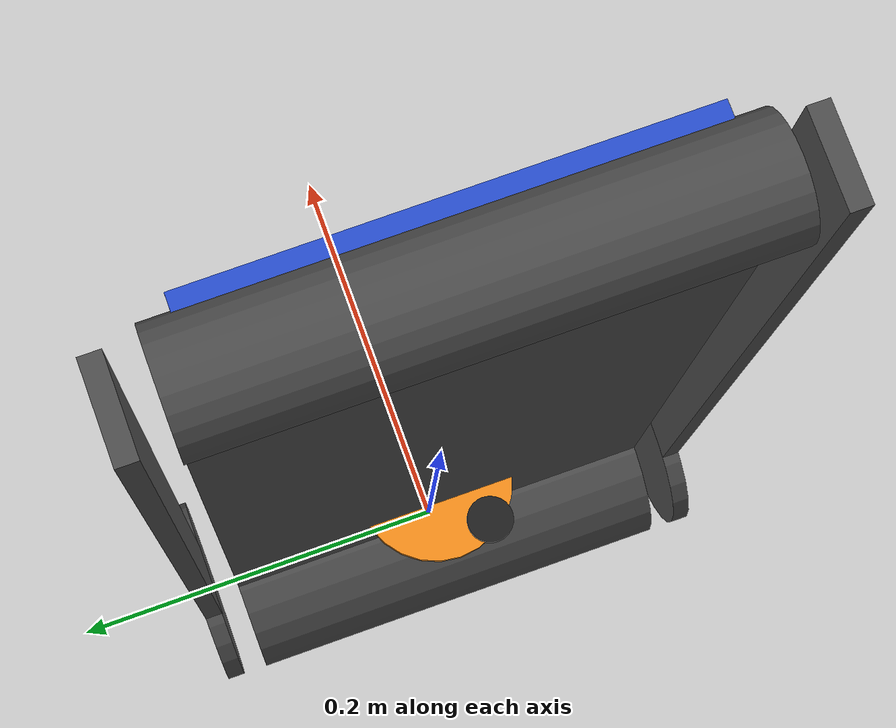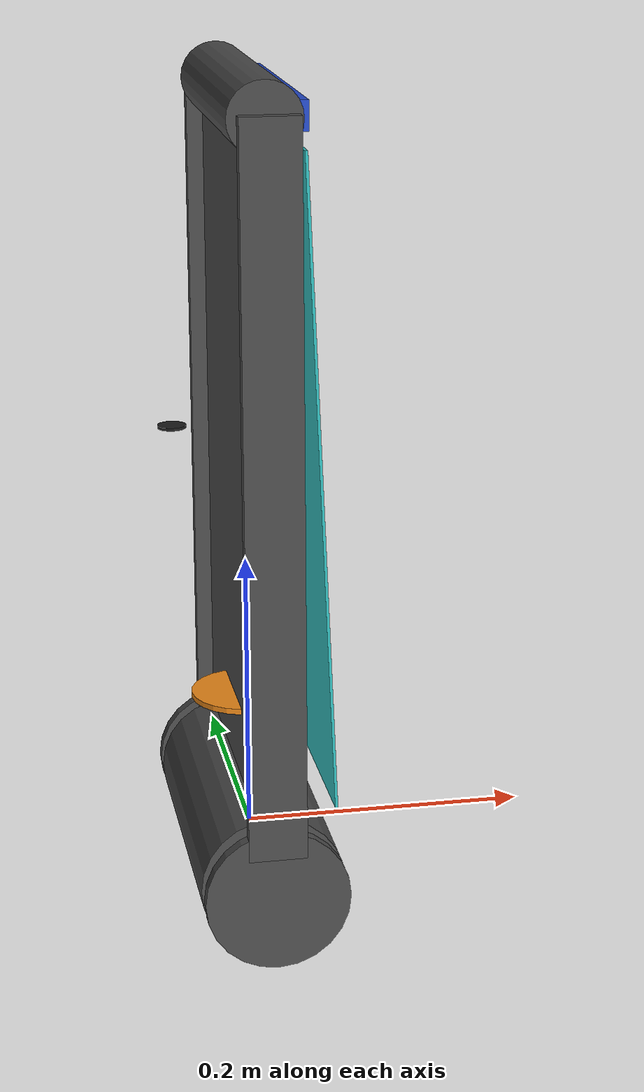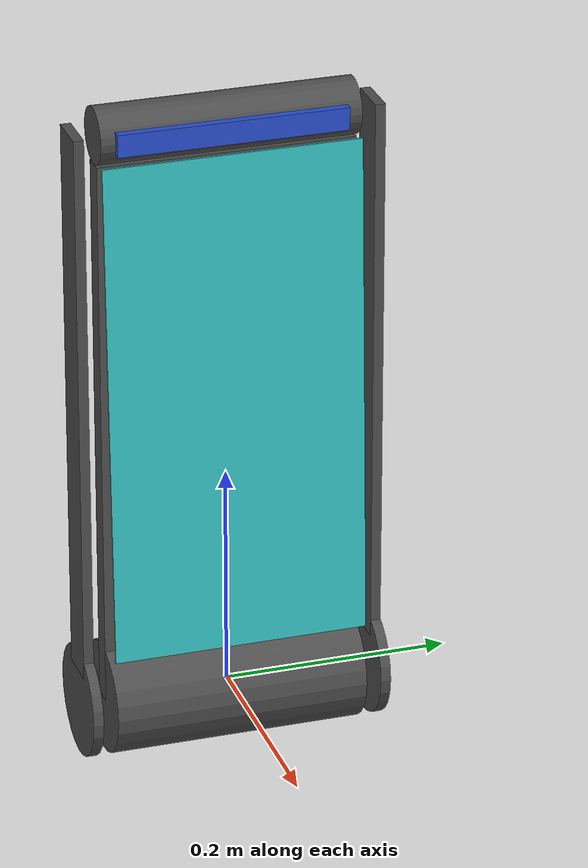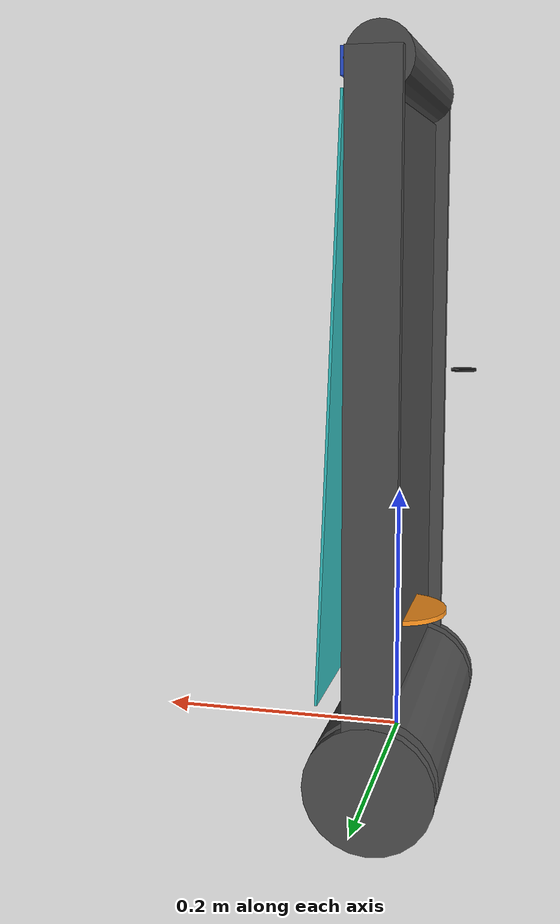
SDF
<?xml version='1.0'?>
<sdf version='1.4'>

  <model name="balance_bot">

    <link name='base_link'>
      <pose>0 0 0 0 0 0</pose>

      <inertial>
        <pose>0 0 0.25 0 0 0</pose>
        <mass>20.0</mass>
        <inertia>
          <ixx>0.17</ixx>
          <ixy>0</ixy>
          <ixz>0</ixz>
          <iyy>0.17</iyy>
          <iyz>0</iyz>
          <izz>0.07</izz>
        </inertia>
      </inertial>

      <visual name='body'>
        <pose>0 0 0.25 0 0 0</pose>
        <geometry>
          <box>
            <size>0.02 0.225 0.5</size>
          </box>
        </geometry>
        <material>
          <script>
            <uri>file://media/materials/scripts/gazebo.material</uri>
            <name>Gazebo/DarkGrey</name>
          </script>
        </material>
      </visual>

      <visual name='screen'>
        <pose>0.035 0 0.28 0 -0.04 0</pose>
        <geometry>
          <box>
            <size>0.002 0.225 0.45</size>
          </box>
        </geometry>
        <material>
          <script>
            <uri>file://media/materials/scripts/gazebo.material</uri>
            <name>Gazebo/Turquoise</name>
          </script>
        </material>
      </visual>

      <visual name='bottom_cylinder'>
        <pose>0 0 0 1.57 0 0</pose>
        <geometry>
          <cylinder>
            <radius>0.05</radius>
            <length>0.225</length>
          </cylinder>
        </geometry>
        <material>
          <script>
            <uri>file://media/materials/scripts/gazebo.material</uri>
            <name>Gazebo/DarkGrey</name>
          </script>
        </material>
      </visual>

      <collision name='bottom_cylinder_collision'>
        <pose>0 0 0 1.57 0 0</pose>
        <geometry>
          <cylinder>
            <radius>0.05</radius>
            <length>0.225</length>
          </cylinder>
        </geometry>
      </collision>

      <collision name='caster_collision_ghost'>
        <pose>0.3 0 -0.03 0 0 0</pose>
        <geometry>
          <sphere>
            <radius>0.05</radius>
          </sphere>
        </geometry>
        <surface>
          <friction>
            <ode>
              <mu>1.0</mu>
              <mu2>0.45</mu2>
              <slip1>1.0</slip1>
              <slip2>1.0</slip2>
            </ode>
          </friction>
          <bounce>
            <restitution_coefficient>0</restitution_coefficient>
            <threshold>1e6</threshold>
          </bounce>
        </surface>
      </collision>

      <collision name='caster_collision'>
        <pose>-0.15 0 -0.05 0 0 0</pose>
        <geometry>
          <sphere>
            <radius>0.05</radius>
          </sphere>
        </geometry>
        <surface>
          <friction>
            <ode>
              <mu>1.0</mu>
              <mu2>0.45</mu2>
              <slip1>1.0</slip1>
              <slip2>1.0</slip2>
            </ode>
          </friction>
          <bounce>
            <restitution_coefficient>0</restitution_coefficient>
            <threshold>1e6</threshold>
          </bounce>
        </surface>
      </collision>

    </link>

    <!-- Head -->

    <link name='head'>
      <pose>0 0 0.525 0 0 0</pose>

      <inertial>
        <mass>1</mass>
        <pose>0 0 0 0 0 0</pose>
        <inertia>
          <ixx>0.015</ixx>
          <ixy>0</ixy>
          <ixz>0</ixz>
          <iyy>0.005</iyy>
          <iyz>0</iyz>
          <izz>0.015</izz>
        </inertia>
      </inertial>

      <visual name='head_visual'>
        <pose>0 0 0 1.57 0 0</pose>
        <geometry>
          <cylinder>
            <radius>0.025</radius>
            <length>0.225</length>
          </cylinder>
        </geometry>
        <material>
          <script>
            <uri>file://media/materials/scripts/gazebo.material</uri>
            <name>Gazebo/DarkGrey</name>
          </script>
        </material>
      </visual>

      <visual name='head_camera_visual'>
        <pose>0.02 0 0 1.57 0 0</pose>
        <geometry>
          <box>
            <size>0.02 0.02 0.2</size>
          </box>
        </geometry>
        <material>
          <script>
            <uri>file://media/materials/scripts/gazebo.material</uri>
            <name>Gazebo/Blue</name>
          </script>
        </material>
      </visual>

      <collision name='head_collision'>
        <pose>0 0 0 1.57 0 0</pose>
        <geometry>
          <cylinder>
            <radius>0.025</radius>
            <length>0.225</length>
          </cylinder>
        </geometry>
      </collision>

      <sensor name="camera_imu" type="imu">
        <always_on>1</always_on>
      </sensor>

      <sensor name="camera" type="camera">
        <pose>0 0 0 0 0 0</pose>
        <camera>
          <horizontal_fov>2.0</horizontal_fov>
          <image>
            <format>R8G8B8</format>
            <width>640</width>
            <height>360</height>
          </image>
          <clip>
            <near>0.05</near>
            <far>15000</far>
          </clip>
        </camera>
        <always_on>1</always_on>
        <update_rate>10</update_rate>
        <visualize>false</visualize>

        <plugin name='camera_plugin' filename='libgazebo_ros_camera.so'>
          <alwaysOn>true</alwaysOn>
          <imageTopicName>image_raw</imageTopicName>
          <cameraInfoTopicName>camera_info</cameraInfoTopicName>
          <updateRate>30.0</updateRate>
          <cameraName>main_camera</cameraName>
          <frameName>/main_camera_frame</frameName>
          <CxPrime>320.5</CxPrime>
          <Cx>320.5</Cx>
          <Cy>240.5</Cy>
          <hackBaseline>0</hackBaseline>
          <focalLength>277.191356</focalLength>
          <distortionK1>0.0</distortionK1>
          <distortionK2>0.0</distortionK2>
          <distortionK3>0.0</distortionK3>
          <distortionT1>0.0</distortionT1>
          <distortionT2>0.0</distortionT2>
        </plugin>

        <plugin name="GstCameraPlugin" filename="libgazebo_gst_camera_plugin.so">
            <robotNamespace></robotNamespace>
            <udpHost>127.0.0.1</udpHost>
            <udpPort>5600</udpPort>
        </plugin>

        <plugin name="CameraManagerPlugin" filename="libgazebo_camera_manager_plugin.so">
            <robotNamespace>550_frame</robotNamespace>
            <interval>1</interval>
            <width>3840</width>
            <height>2160</height>
            <maximum_zoom>8.0</maximum_zoom>
            <video_uri>5600</video_uri>
            <system_id>1</system_id>
            <cam_component_id>100</cam_component_id>
            <mavlink_cam_udp_port>14530</mavlink_cam_udp_port>
        </plugin>

      </sensor>

      <sensor name="depth_camera" type="depth">
        <pose>0 0 0 0 0 0</pose>
        <update_rate>30</update_rate>
        <camera>
          <horizontal_fov>1.02974</horizontal_fov>
          <image>
            <format>R8G8B8</format>
            <width>640</width>
            <height>480</height>
          </image>
          <clip>
            <near>0.5</near>
            <far>18</far>
          </clip>
        </camera>
        <plugin filename="libgazebo_ros_openni_kinect.so" name="camera_controller">
          <cameraName>camera</cameraName>
          <alwaysOn>true</alwaysOn>
          <updateRate>20</updateRate>
          <pointCloudCutoff>0.2</pointCloudCutoff>
          <pointCloudCutoffMax>20</pointCloudCutoffMax>
          <imageTopicName>rgb/image_raw</imageTopicName>
          <cameraInfoTopicName>rgb/camera_info</cameraInfoTopicName>
          <depthImageTopicName>depth/image_raw</depthImageTopicName>
          <depthImageCameraInfoTopicName>depth/camera_info</depthImageCameraInfoTopicName>
          <pointCloudTopicName>depth/points</pointCloudTopicName>
          <frameName>camera_link</frameName>
          <distortion_k1>0.0</distortion_k1>
          <distortion_k2>0.0</distortion_k2>
          <distortion_k3>0.0</distortion_k3>
          <distortion_t1>0.0</distortion_t1>
          <distortion_t2>0.0</distortion_t2>
        </plugin>
      </sensor>

    </link>

    <joint name='rotor_head' type='fixed'>
      <parent>base_link</parent>
      <child>head</child>
      <pose>0 0 0 0 0 0</pose>
      <axis>
        <xyz>0 1 0</xyz>
        <limit>
          <lower>-1e+16</lower>
          <upper>1e+16</upper>
          <effort>-1</effort>
          <velocity>-1</velocity>
        </limit>
        <dynamics>
          <spring_reference>0</spring_reference>
          <spring_stiffness>0</spring_stiffness>
          <damping>0</damping>
          <friction>0</friction>
        </dynamics>
      </axis>
    </joint>

    <!-- Stereo Camera -->

    <!-- Arm Left -->

    <link name="left_arm">
      <pose>0 0.13 0 0 0 0</pose>

      <inertial>
        <pose>0 0 0.25 0 0 0</pose>
        <mass>2</mass>
        <inertia>
          <ixx>0.1</ixx>
          <ixy>0</ixy>
          <ixz>0</ixz>
          <iyy>0.1</iyy>
          <iyz>0</iyz>
          <izz>0.005</izz>
        </inertia>
      </inertial>

      <collision name="collision">
        <pose>0 0 0.28 0 0 0</pose>
        <geometry>
          <box>
            <size>0.04 0.009 0.5</size>
          </box>
        </geometry>
          <surface>
            <friction>
              <torsional>
                <coefficient>0.25</coefficient>
                <use_patch_radius>1</use_patch_radius>
                <surface_radius>0.0686</surface_radius>
              </torsional>
              <ode>
                <mu>1.0</mu>
                <mu2>0.45</mu2>
                <slip1>1.0</slip1>
                <slip2>1.0</slip2>
              </ode>
            </friction>
            <bounce>
              <restitution_coefficient>0</restitution_coefficient>
              <threshold>1e6</threshold>
            </bounce>
            <contact>
              <ode>
                <min_depth>0.001</min_depth>
                <max_vel>0.0</max_vel>
                <kp>1.0e6</kp>
                <kd>100.0</kd>
              </ode>
            </contact>
          </surface>
      </collision>

      <visual name="visual">
        <pose>0 0 0.28 0 0 0</pose>
        <geometry>
          <box>
            <size>0.04 0.009 0.5</size>
          </box>
        </geometry>
        <material>
          <script>
            <name>Gazebo/DarkGrey</name>
            <uri>__default__</uri>
          </script>
        </material>
      </visual>

      <visual name='bottom_cylinder'>
        <pose>0 0 0 1.57 0 0</pose>
        <geometry>
          <cylinder>
            <radius>0.05</radius>
            <length>0.009</length>
          </cylinder>
        </geometry>
        <material>
          <script>
            <uri>file://media/materials/scripts/gazebo.material</uri>
            <name>Gazebo/DarkGrey</name>
          </script>
        </material>
      </visual>

    </link>

    <joint type="fixed" name="left_arm_hinge">
      <pose>0 0 0 0 0 0</pose>
      <child>left_arm</child>
      <parent>base_link</parent>
      <axis>
        <xyz>0 1 0</xyz>
        <limit>
          <lower>-1e+16</lower>
          <upper>1e+16</upper>
        </limit>
        <dynamics>
          <spring_reference>0</spring_reference>
          <spring_stiffness>0</spring_stiffness>
        </dynamics>
        <use_parent_model_frame>1</use_parent_model_frame>
      </axis>
    </joint>

    <!-- Arm Right -->

    <link name="right_arm">
      <pose>0 -0.13 0 0 0 0</pose>

      <inertial>
        <pose>0 0 0.25 0 0 0</pose>
        <mass>2</mass>
        <inertia>
          <ixx>0.1</ixx>
          <ixy>0</ixy>
          <ixz>0</ixz>
          <iyy>0.1</iyy>
          <iyz>0</iyz>
          <izz>0.005</izz>
        </inertia>
      </inertial>

      <collision name="collision">
        <pose>0 0 0.28 0 0 0</pose>
        <geometry>
          <box>
            <size>0.04 0.009 0.5</size>
          </box>
        </geometry>
          <surface>
            <friction>
              <torsional>
                <coefficient>0.25</coefficient>
                <use_patch_radius>1</use_patch_radius>
                <surface_radius>0.0686</surface_radius>
              </torsional>
              <ode>
                <mu>1.0</mu>
                <mu2>0.45</mu2>
                <slip1>1.0</slip1>
                <slip2>1.0</slip2>
              </ode>
            </friction>
            <bounce>
              <restitution_coefficient>0</restitution_coefficient>
              <threshold>1e6</threshold>
            </bounce>
            <contact>
              <ode>
                <min_depth>0.001</min_depth>
                <max_vel>0.0</max_vel>
                <kp>1.0e6</kp>
                <kd>100.0</kd>
              </ode>
            </contact>
          </surface>
      </collision>

      <visual name="visual">
        <pose>0 0 0.28 0 0 0</pose>
        <geometry>
          <box>
            <size>0.04 0.009 0.5</size>
          </box>
        </geometry>
        <material>
          <script>
            <name>Gazebo/DarkGrey</name>
            <uri>__default__</uri>
          </script>
        </material>
      </visual>

      <visual name='bottom_cylinder'>
        <pose>0 0 0 1.57 0 0</pose>
        <geometry>
          <cylinder>
            <radius>0.05</radius>
            <length>0.009</length>
          </cylinder>
        </geometry>
        <material>
          <script>
            <uri>file://media/materials/scripts/gazebo.material</uri>
            <name>Gazebo/DarkGrey</name>
          </script>
        </material>
      </visual>

    </link>

    <joint type="fixed" name="right_arm_hinge">
      <pose>0 0 0 0 0 0</pose>
      <child>right_arm</child>
      <parent>base_link</parent>
      <axis>
        <xyz>0 1 0</xyz>
        <limit>
          <lower>-1e+16</lower>
          <upper>1e+16</upper>
        </limit>
        <dynamics>
          <spring_reference>0</spring_reference>
          <spring_stiffness>0</spring_stiffness>
        </dynamics>
        <use_parent_model_frame>1</use_parent_model_frame>
      </axis>
    </joint>

    <!-- Left Wheel -->

    <link name="left_wheel">
      <pose>0.1 0.33 0 1.57 0 0</pose>

      <inertial>
        <pose>0 0 0 1.57 0 0</pose>
        <mass>0.4</mass>
        <inertia>
          <ixx>0.0003</ixx>
          <ixy>0</ixy>
          <ixz>0</ixz>
          <iyy>0.0003</iyy>
          <iyz>0</iyz>
          <izz>0.0004</izz>
        </inertia>
      </inertial>

      <collision name="collision">
        <geometry>
          <cylinder>
            <radius>0.1</radius>
            <length>0.05</length>
          </cylinder>
        </geometry>
          <surface>
            <friction>
              <torsional>
                <coefficient>0.25</coefficient>
                <use_patch_radius>1</use_patch_radius>
                <surface_radius>0.0686</surface_radius>
              </torsional>
              <ode>
                <mu>1.0</mu>
                <mu2>0.45</mu2>
                <fdir1>1 0 0</fdir1>
                <slip1>0.0</slip1>
                <slip2>0.0</slip2>
              </ode>
            </friction>
            <bounce>
              <restitution_coefficient>0</restitution_coefficient>
              <threshold>1e6</threshold>
            </bounce>
            <contact>
              <ode>
                <min_depth>0.001</min_depth>
                <max_vel>0.0</max_vel>
                <kp>1.0e6</kp>
                <kd>100.0</kd>
                <minDepth>0.001</minDepth>
              </ode>
            </contact>
          </surface>
      </collision>

    </link>

    <joint type="revolute" name="left_wheel_hinge">
      <pose>0 0 0 0 0 0</pose>
      <child>left_wheel</child>
      <parent>base_link</parent>
      <axis>
        <xyz>0 -1 0</xyz>
        <limit>
          <lower>-1e+16</lower>
          <upper>1e+16</upper>
        </limit>
        <dynamics>
          <spring_reference>0</spring_reference>
          <spring_stiffness>0</spring_stiffness>
        </dynamics>
        <use_parent_model_frame>1</use_parent_model_frame>
      </axis>
    </joint>

    <!-- Right Wheel -->

    <link name="right_wheel">
      <pose>0.1 -0.33 0 1.57 0 0</pose>

      <inertial>
        <pose>0 0 0 1.57 0 0</pose>
        <mass>0.4</mass>
        <inertia>
          <ixx>0.0003</ixx>
          <ixy>0</ixy>
          <ixz>0</ixz>
          <iyy>0.0003</iyy>
          <iyz>0</iyz>
          <izz>0.0004</izz>
        </inertia>
      </inertial>

      <collision name="collision">
        <geometry>
          <cylinder>
            <radius>0.1</radius>
            <length>0.05</length>
          </cylinder>
        </geometry>
          <surface>
            <friction>
              <torsional>
                <coefficient>0.25</coefficient>
                <use_patch_radius>1</use_patch_radius>
                <surface_radius>0.0686</surface_radius>
              </torsional>
              <ode>
                <mu>1.0</mu>
                <mu2>0.45</mu2>
                <fdir1>1 0 0</fdir1>
                <slip1>0.0</slip1>
                <slip2>0.0</slip2>
              </ode>
            </friction>
            <bounce>
              <restitution_coefficient>0</restitution_coefficient>
              <threshold>1e6</threshold>
            </bounce>
            <contact>
              <ode>
                <min_depth>0.001</min_depth>
                <max_vel>0.0</max_vel>
                <kp>1.0e6</kp>
                <kd>100.0</kd>
                <minDepth>0.001</minDepth>
              </ode>
            </contact>
          </surface>
      </collision>

    </link>

    <joint type="revolute" name="right_wheel_hinge">
      <pose>0 0 0 0 0 0</pose>
      <child>right_wheel</child>
      <parent>base_link</parent>
      <axis>
        <xyz>0 -1 0</xyz>
        <limit>
          <lower>-1e+16</lower>
          <upper>1e+16</upper>
        </limit>
        <dynamics>
          <spring_reference>0</spring_reference>
          <spring_stiffness>0</spring_stiffness>
        </dynamics>
        <use_parent_model_frame>1</use_parent_model_frame>
      </axis>
    </joint>

    <!-- GPS Sensors -->

    <include>
        <uri>model://gps</uri>
        <pose>-0.05 0 0.3 0 0 0</pose>
        <name>gps</name>
    </include>

    <joint name='gps_joint' type='fixed'>
        <child>gps::link</child>
        <parent>base_link</parent>
    </joint>

    <!-- IMU -->
    <link name='rover/imu_link'>

      <pose>0 0 0.1 0 0 0</pose>

      <inertial>
        <pose>0 0 0 0 0 0</pose>
        <mass>0.015</mass>
        <inertia>
          <ixx>1e-05</ixx>
          <ixy>0</ixy>
          <ixz>0</ixz>
          <iyy>1e-05</iyy>
          <iyz>0</iyz>
          <izz>1e-05</izz>
        </inertia>
      </inertial>

      <visual name="visual">
        <geometry>
          <cylinder>
            <radius>0.04</radius>
            <length>0.004</length>
          </cylinder>
        </geometry>
        <material>
          <script>
            <name>Gazebo/Orange</name>
          </script>
        </material>
      </visual>

    </link>

    <joint name='rover/imu_joint' type='revolute'>
      <child>rover/imu_link</child>
      <parent>base_link</parent>
      <axis>
        <xyz>1 0 0</xyz>
        <limit>
          <lower>0</lower>
          <upper>0</upper>
          <effort>0</effort>
          <velocity>0</velocity>
        </limit>
        <dynamics>
          <spring_reference>0</spring_reference>
          <spring_stiffness>0</spring_stiffness>
        </dynamics>
        <use_parent_model_frame>1</use_parent_model_frame>
      </axis>
    </joint>

    <!-- Ground Truth -->

    <plugin name='groundtruth_plugin' filename='libgazebo_groundtruth_plugin.so'>
      <robotNamespace/>
    </plugin>

    <!-- Magnetometer -->

    <plugin name='magnetometer_plugin' filename='libgazebo_magnetometer_plugin.so'>
      <robotNamespace/>
      <pubRate>100</pubRate>
      <noiseDensity>0.0004</noiseDensity>
      <randomWalk>6.4e-06</randomWalk>
      <biasCorrelationTime>600</biasCorrelationTime>
      <magTopic>/mag</magTopic>
    </plugin>

    <!-- Barometer -->

    <plugin name='barometer_plugin' filename='libgazebo_barometer_plugin.so'>
      <robotNamespace/>
      <pubRate>50</pubRate>
      <baroTopic>/baro</baroTopic>
    </plugin>

    <!-- Diff Drive Plugin -->

    <!--Mavlink -->

    <plugin name='mavlink_interface' filename='libgazebo_mavlink_interface.so'>
      <robotNamespace></robotNamespace>
      <imuSubTopic>/imu</imuSubTopic>
      <magSubTopic>/mag</magSubTopic>
      <baroSubTopic>/baro</baroSubTopic>
      <mavlink_addr>INADDR_ANY</mavlink_addr>
      <mavlink_tcp_port>4560</mavlink_tcp_port>
      <mavlink_udp_port>14560</mavlink_udp_port>
      <serialEnabled>0</serialEnabled>
      <serialDevice>/dev/ttyACM0</serialDevice>
      <baudRate>921600</baudRate>
      <qgc_addr>INADDR_ANY</qgc_addr>
      <qgc_udp_port>14550</qgc_udp_port>
      <sdk_addr>INADDR_ANY</sdk_addr>
      <sdk_udp_port>14540</sdk_udp_port>
      <hil_mode>0</hil_mode>
      <hil_state_level>false</hil_state_level>
      <enable_lockstep>true</enable_lockstep>
      <use_tcp>true</use_tcp>
      <motorSpeedCommandPubTopic>/gazebo/command/motor_speed</motorSpeedCommandPubTopic>
      <control_channels>

        <channel name="left_wheel_drive">
          <input_index>0</input_index>
          <input_offset>0</input_offset>
          <input_scaling>-20</input_scaling>
          <zero_position_disarmed>0</zero_position_disarmed>
          <zero_position_armed>0</zero_position_armed>
          <joint_control_type>velocity</joint_control_type>
          <joint_name>left_wheel_hinge</joint_name>
          <joint_control_pid>
            <p>0.7</p>
            <i>0</i>
            <d>0</d>
            <iMax>800</iMax>
            <iMin>-800</iMin>
            <cmdMax>1200</cmdMax>
            <cmdMin>-1200</cmdMin>
          </joint_control_pid>
        </channel>

        <channel name="right_wheel_drive">
          <input_index>5</input_index>
          <input_offset>0</input_offset>
          <input_scaling>-20</input_scaling>
          <zero_position_disarmed>0</zero_position_disarmed>
          <zero_position_armed>0</zero_position_armed>
          <joint_control_type>velocity</joint_control_type>
          <joint_name>right_wheel_hinge</joint_name>
          <joint_control_pid>
            <p>0.7</p>
            <i>0</i>
            <d>0</d>
            <iMax>800</iMax>
            <iMin>-800</iMin>
            <cmdMax>1200</cmdMax>
            <cmdMin>-1200</cmdMin>
          </joint_control_pid>
        </channel>

      </control_channels>
    </plugin>

    <!-- Physics -->
    <static>0</static>

    <!-- IMU -->

    <plugin name='gazebo_imu_plugin' filename='libgazebo_imu_plugin.so'>
      <robotNamespace></robotNamespace>
      <linkName>rover/imu_link</linkName>
      <imuTopic>/imu</imuTopic>
      <gyroscopeNoiseDensity>0.0003394</gyroscopeNoiseDensity>
      <gyroscopeRandomWalk>3.8785e-05</gyroscopeRandomWalk>
      <gyroscopeBiasCorrelationTime>1000.0</gyroscopeBiasCorrelationTime>
      <gyroscopeTurnOnBiasSigma>0.0087</gyroscopeTurnOnBiasSigma>
      <accelerometerNoiseDensity>0.004</accelerometerNoiseDensity>
      <accelerometerRandomWalk>0.006</accelerometerRandomWalk>
      <accelerometerBiasCorrelationTime>300.0</accelerometerBiasCorrelationTime>
      <accelerometerTurnOnBiasSigma>0.196</accelerometerTurnOnBiasSigma>
    </plugin>

  </model>
</sdf>

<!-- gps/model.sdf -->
<sdf version="1.6">
  <model name="gps">
    <link name="link">
      <pose>0 0 0 0 0 0</pose>
      <inertial>
        <pose>0 0 0 0 0 0</pose>
        <mass>0.015</mass>
        <inertia>
          <ixx>1e-05</ixx>
          <ixy>0</ixy>
          <ixz>0</ixz>
          <iyy>1e-05</iyy>
          <iyz>0</iyz>
          <izz>1e-05</izz>
        </inertia>
      </inertial>
      <visual name="visual">
        <geometry>
          <cylinder>
            <radius>0.01</radius>
            <length>0.002</length>
          </cylinder>
        </geometry>
        <material>
          <script>
            <name>Gazebo/Black</name>
            <uri>file://usr/share/gz/gz-sim8/media/gazebo.material</uri>
          </script>
        </material>
      </visual>
      <sensor name="gps" type="gps">
        <pose>0 0 0 0 0 0</pose>
        <update_rate>5.0</update_rate>
        <always_on>true</always_on>
        <visualize>false</visualize>
        <!-- GpsSensor noise currently not used -->
        <plugin name="gps_plugin" filename="libgazebo_gps_plugin.so">
          <robotNamespace></robotNamespace>
          <gpsNoise>true</gpsNoise>
          <gpsXYRandomWalk>2.0</gpsXYRandomWalk>
          <gpsZRandomWalk>4.0</gpsZRandomWalk>
          <gpsXYNoiseDensity>2.0e-4</gpsXYNoiseDensity>
          <gpsZNoiseDensity>4.0e-4</gpsZNoiseDensity>
          <gpsVXYNoiseDensity>0.2</gpsVXYNoiseDensity>
          <gpsVZNoiseDensity>0.4</gpsVZNoiseDensity>
        </plugin>
      </sensor>
    </link>
  </model>
</sdf>
